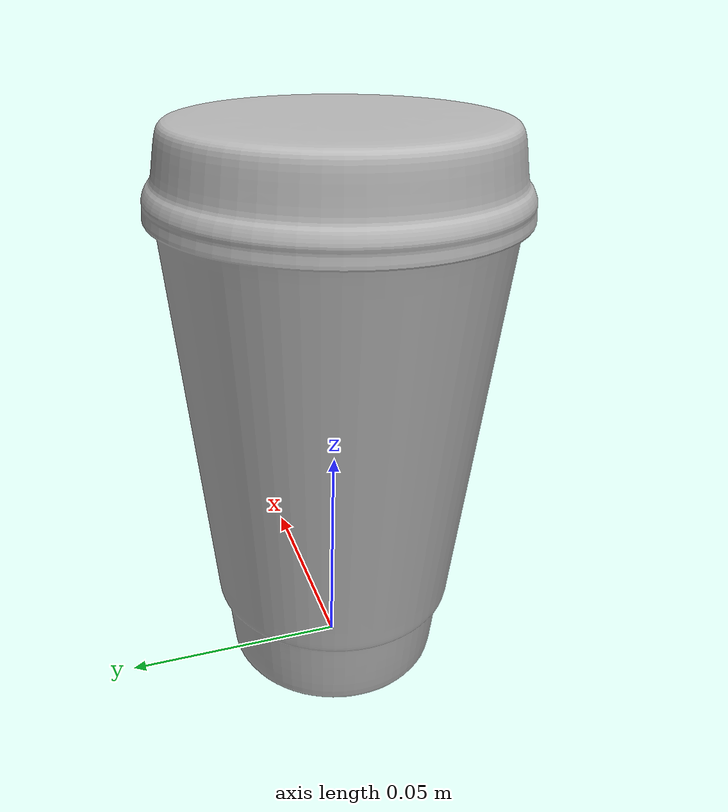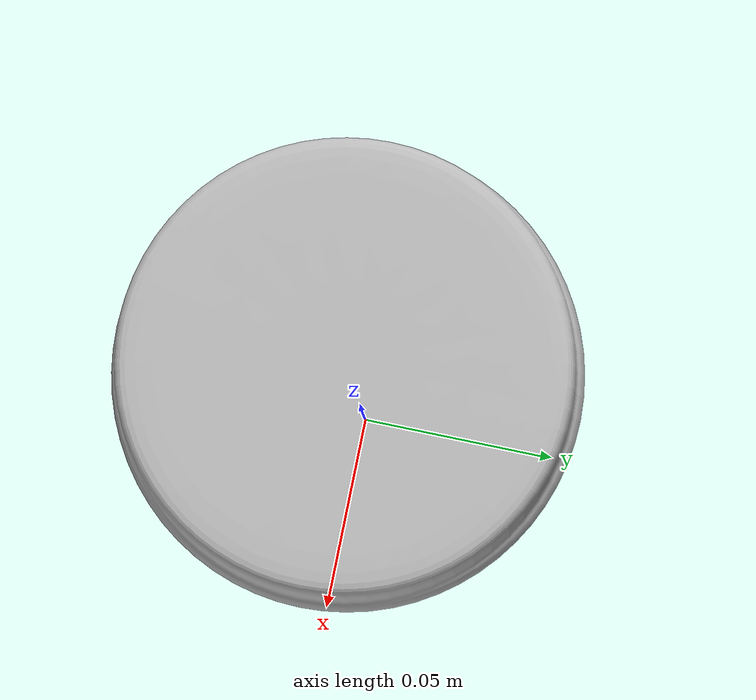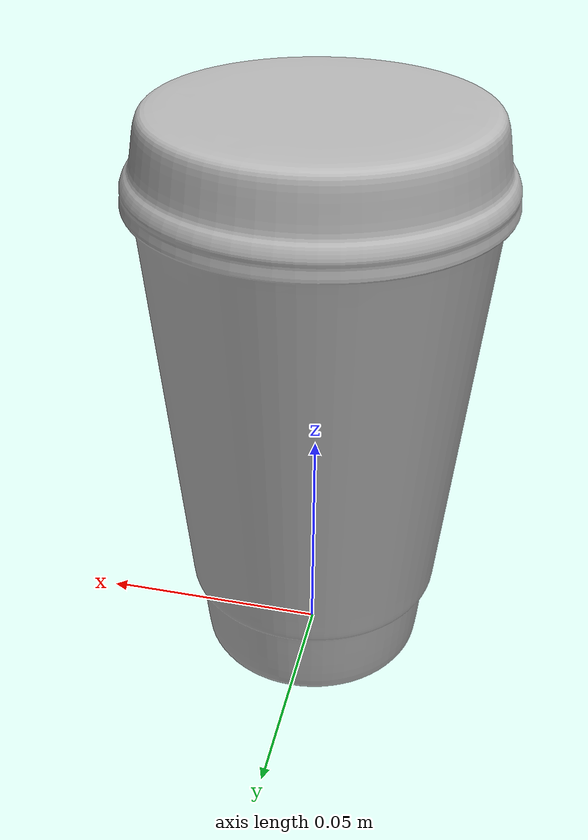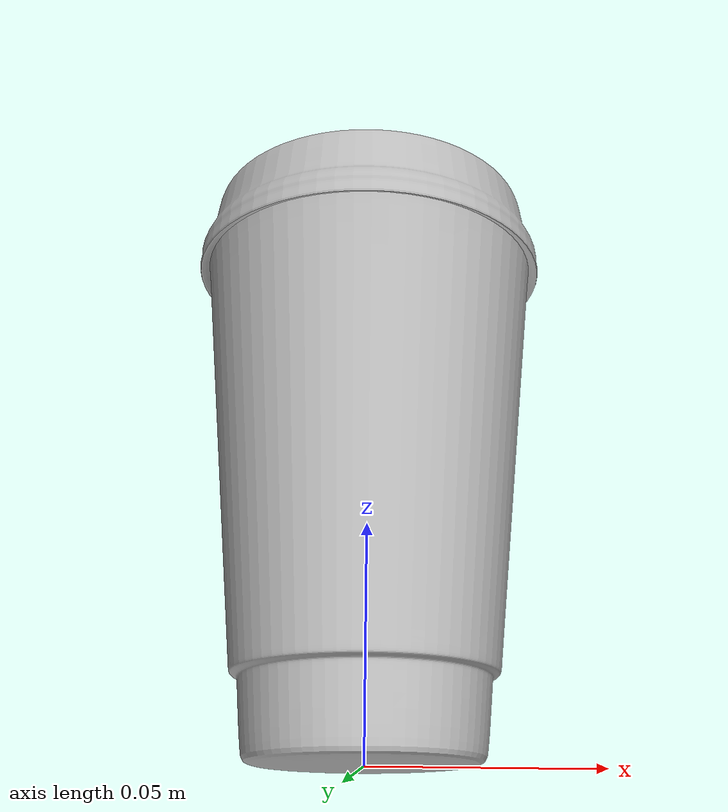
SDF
<?xml version='1.0'?>
<sdf version='1.4'>
  <model name="coffee_test">
    <pose>0 0 0  0 0 0</pose>
    <static>true</static>
    <link name="body">
      <visual name="visual">
        <geometry>
          <mesh>
            <uri>model://new_coffee/test.dae</uri>
            <scale>0.01 0.01 0.01</scale>
          </mesh>
        </geometry>
      </visual>
    </link>
  </model>
</sdf>
